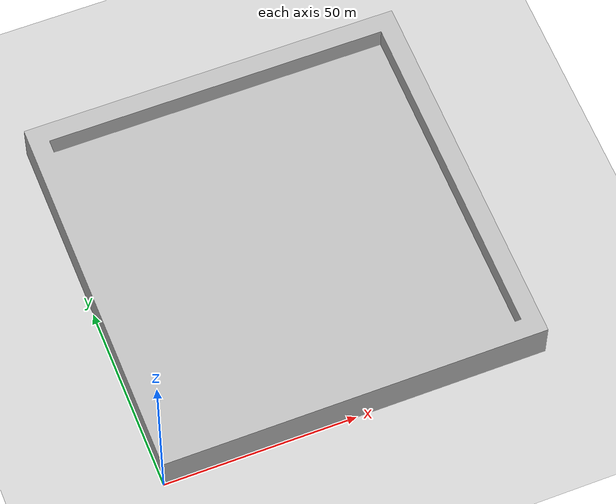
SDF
<?xml version ='1.0'?>
<sdf version ='1.4'>
  <world name='default'>

    <gui>
      <camera name="user_default">
        <pose>-20 -20 10  0 0 0</pose>
      </camera>
    </gui>

    <include>
      <uri>model://ground_plane</uri>
    </include>

    <include>
      <uri>model://sun</uri>
    </include>

    <model name="arena">
      <pose>0 0 0  0 0 0</pose>
      <static>true</static>
      <link name="body">
        <visual name="visual">
          <geometry>
            <mesh><uri>file://basic_arena_v2.dae</uri></mesh>
          </geometry>
        </visual>
      </link>
    </model>

    <plugin filename="libworld_edit.so" name="world_edit"/>
  </world>
</sdf>
